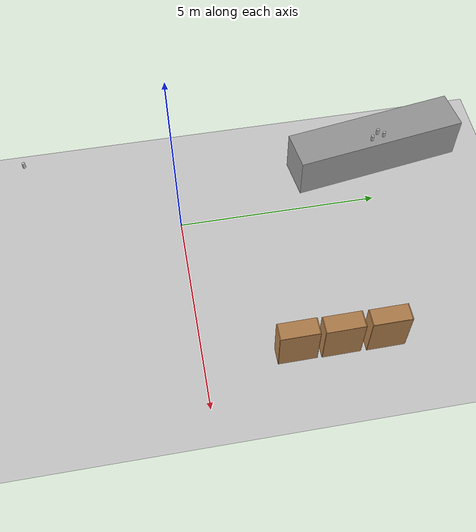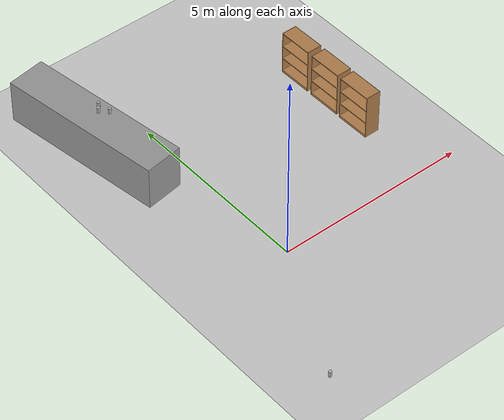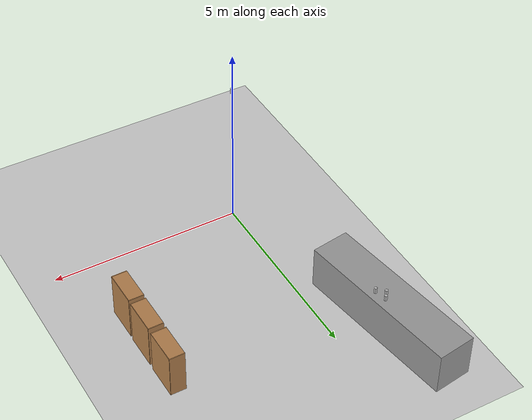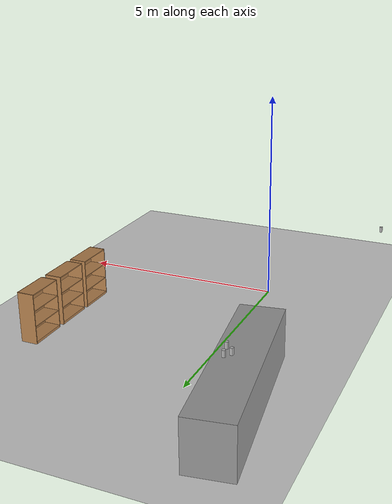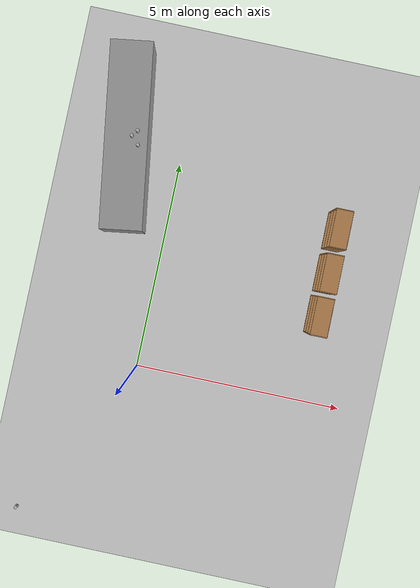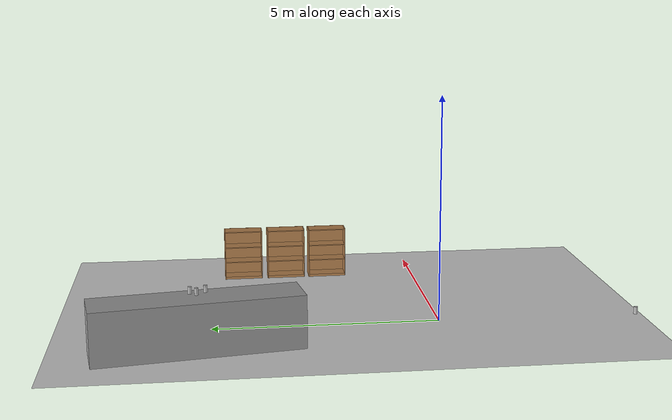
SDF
<sdf version="1.6">
 <world name="default">
  <light name="sun" type="directional">
   <pose>0 0 10 0 -0 0</pose>
   <diffuse>0.8 0.8 0.8 1</diffuse>
   <specular>0.1 0.1 0.1 1</specular>
   <attenuation>
    <range>1000</range>
    <constant>0.9</constant>
    <linear>0.01</linear>
    <quadratic>0.001</quadratic>
   </attenuation>
   <direction>-0.5 0.5 -1</direction>
  </light>
  <model name="ground_plane">
   <static>1</static>
   <link name="link">
    <collision name="collision">
     <geometry><plane><normal>0 0 1</normal><size>100 100</size></plane></geometry>
     <surface><friction><ode><mu>100</mu><mu2>50</mu2></ode></friction></surface>
    </collision>
    <visual name="visual">
     <cast_shadows>0</cast_shadows>
     <geometry><plane><normal>0 0 1</normal><size>100 100</size></plane></geometry>
     <material>
      <script><uri>file://media/materials/scripts/gazebo.material</uri><name>Gazebo/Grey</name></script>
     </material>
    </visual>
   </link>
  </model>
  <gravity>0 0 -9.8</gravity>
  <magnetic_field>6e-06 2.3e-05 -4.2e-05</magnetic_field>
  <atmosphere type="adiabatic"/>
  <physics name="default_physics" default="0" type="ode">
   <max_step_size>0.001</max_step_size>
   <real_time_factor>1</real_time_factor>
   <real_time_update_rate>1000</real_time_update_rate>
  </physics>
  <scene><ambient>0.4 0.4 0.4 1</ambient><background>0.7 0.7 0.7 1</background><shadows>1</shadows></scene>
  <spherical_coordinates>
   <surface_model>EARTH_WGS84</surface_model>
   <latitude_deg>0</latitude_deg>
   <longitude_deg>0</longitude_deg>
   <elevation>0</elevation>
   <heading_deg>0</heading_deg>
  </spherical_coordinates>
  <model name="bookshelf">
   <static>1</static>
   <link name="link">
    <inertial><mass>1</mass></inertial>
    <collision name="back">
     <pose>0 0.005 0.6 0 -0 0</pose>
     <geometry><box><size>0.9 0.01 1.2</size></box></geometry>
    </collision>
    <visual name="visual1">
     <pose>0 0.005 0.6 0 -0 0</pose>
     <geometry><box><size>0.9 0.01 1.2</size></box></geometry>
     <material>
      <script><uri>file://media/materials/scripts/gazebo.material</uri><name>Gazebo/Wood</name></script>
     </material>
    </visual>
    <collision name="left_side">
     <pose>0.45 -0.195 0.6 0 -0 0</pose>
     <geometry><box><size>0.02 0.4 1.2</size></box></geometry>
    </collision>
    <visual name="visual2">
     <pose>0.45 -0.195 0.6 0 -0 0</pose>
     <geometry><box><size>0.02 0.4 1.2</size></box></geometry>
     <material>
      <script><uri>file://media/materials/scripts/gazebo.material</uri><name>Gazebo/Wood</name></script>
     </material>
    </visual>
    <collision name="right_side">
     <pose>-0.45 -0.195 0.6 0 -0 0</pose>
     <geometry><box><size>0.02 0.4 1.2</size></box></geometry>
    </collision>
    <visual name="visual3">
     <pose>-0.45 -0.195 0.6 0 -0 0</pose>
     <geometry><box><size>0.02 0.4 1.2</size></box></geometry>
     <material>
      <script><uri>file://media/materials/scripts/gazebo.material</uri><name>Gazebo/Wood</name></script>
     </material>
    </visual>
    <collision name="bottom">
     <pose>0 -0.195 0.03 0 -0 0</pose>
     <geometry><box><size>0.88 0.4 0.06</size></box></geometry>
    </collision>
    <visual name="visual4">
     <pose>0 -0.195 0.03 0 -0 0</pose>
     <geometry><box><size>0.88 0.4 0.06</size></box></geometry>
     <material>
      <script><uri>file://media/materials/scripts/gazebo.material</uri><name>Gazebo/Wood</name></script>
     </material>
    </visual>
    <collision name="top">
     <pose>0 -0.195 1.19 0 -0 0</pose>
     <geometry><box><size>0.88 0.4 0.02</size></box></geometry>
    </collision>
    <visual name="visual5">
     <pose>0 -0.195 1.19 0 -0 0</pose>
     <geometry><box><size>0.88 0.4 0.02</size></box></geometry>
     <material>
      <script><uri>file://media/materials/scripts/gazebo.material</uri><name>Gazebo/Wood</name></script>
     </material>
    </visual>
    <collision name="low_shelf">
     <pose>0 -0.195 0.43 0 -0 0</pose>
     <geometry><box><size>0.88 0.4 0.02</size></box></geometry>
    </collision>
    <visual name="visual6">
     <pose>0 -0.195 0.43 0 -0 0</pose>
     <geometry><box><size>0.88 0.4 0.02</size></box></geometry>
     <material>
      <script><uri>file://media/materials/scripts/gazebo.material</uri><name>Gazebo/Wood</name></script>
     </material>
    </visual>
    <collision name="high_shelf">
     <pose>0 -0.195 0.8 0 -0 0</pose>
     <geometry><box><size>0.88 0.4 0.02</size></box></geometry>
    </collision>
    <visual name="visual7">
     <pose>0 -0.195 0.8 0 -0 0</pose>
     <geometry><box><size>0.88 0.4 0.02</size></box></geometry>
     <material>
      <script><uri>file://media/materials/scripts/gazebo.material</uri><name>Gazebo/Wood</name></script>
     </material>
    </visual>
   </link>
   <pose>4.18023 2.12159 0 0 0 -1.56362</pose>
  </model>
  <model name="unit_box">
   <pose>-1.29903 5.2723 0.571678 0 -2e-06 0.150347</pose>
   <link name="link">
    <inertial>
     <mass>1</mass>
     <inertia>
      <ixx>0.166667</ixx>
      <ixy>0</ixy>
      <ixz>0</ixz>
      <iyy>0.166667</iyy>
      <iyz>0</iyz>
      <izz>0.166667</izz>
     </inertia>
    </inertial>
    <collision name="collision"><geometry><box><size>0.999999 4.38603 1.14688</size></box></geometry></collision>
    <visual name="visual">
     <geometry><box><size>0.999999 4.38603 1.14688</size></box></geometry>
     <material>
      <script><name>Gazebo/Grey</name><uri>file://media/materials/scripts/gazebo.material</uri></script>
     </material>
    </visual>
   </link>
   <static>1</static>
  </model>
  <model name="bookshelf_clone">
   <static>1</static>
   <link name="link">
    <inertial><mass>1</mass></inertial>
    <collision name="back">
     <pose>0 0.005 0.6 0 -0 0</pose>
     <geometry><box><size>0.9 0.01 1.2</size></box></geometry>
    </collision>
    <visual name="visual1">
     <pose>0 0.005 0.6 0 -0 0</pose>
     <geometry><box><size>0.9 0.01 1.2</size></box></geometry>
     <material>
      <script><uri>file://media/materials/scripts/gazebo.material</uri><name>Gazebo/Wood</name></script>
     </material>
    </visual>
    <collision name="left_side">
     <pose>0.45 -0.195 0.6 0 -0 0</pose>
     <geometry><box><size>0.02 0.4 1.2</size></box></geometry>
    </collision>
    <visual name="visual2">
     <pose>0.45 -0.195 0.6 0 -0 0</pose>
     <geometry><box><size>0.02 0.4 1.2</size></box></geometry>
     <material>
      <script><uri>file://media/materials/scripts/gazebo.material</uri><name>Gazebo/Wood</name></script>
     </material>
    </visual>
    <collision name="right_side">
     <pose>-0.45 -0.195 0.6 0 -0 0</pose>
     <geometry><box><size>0.02 0.4 1.2</size></box></geometry>
    </collision>
    <visual name="visual3">
     <pose>-0.45 -0.195 0.6 0 -0 0</pose>
     <geometry><box><size>0.02 0.4 1.2</size></box></geometry>
     <material>
      <script><uri>file://media/materials/scripts/gazebo.material</uri><name>Gazebo/Wood</name></script>
     </material>
    </visual>
    <collision name="bottom">
     <pose>0 -0.195 0.03 0 -0 0</pose>
     <geometry><box><size>0.88 0.4 0.06</size></box></geometry>
    </collision>
    <visual name="visual4">
     <pose>0 -0.195 0.03 0 -0 0</pose>
     <geometry><box><size>0.88 0.4 0.06</size></box></geometry>
     <material>
      <script><uri>file://media/materials/scripts/gazebo.material</uri><name>Gazebo/Wood</name></script>
     </material>
    </visual>
    <collision name="top">
     <pose>0 -0.195 1.19 0 -0 0</pose>
     <geometry><box><size>0.88 0.4 0.02</size></box></geometry>
    </collision>
    <visual name="visual5">
     <pose>0 -0.195 1.19 0 -0 0</pose>
     <geometry><box><size>0.88 0.4 0.02</size></box></geometry>
     <material>
      <script><uri>file://media/materials/scripts/gazebo.material</uri><name>Gazebo/Wood</name></script>
     </material>
    </visual>
    <collision name="low_shelf">
     <pose>0 -0.195 0.43 0 -0 0</pose>
     <geometry><box><size>0.88 0.4 0.02</size></box></geometry>
    </collision>
    <visual name="visual6">
     <pose>0 -0.195 0.43 0 -0 0</pose>
     <geometry><box><size>0.88 0.4 0.02</size></box></geometry>
     <material>
      <script><uri>file://media/materials/scripts/gazebo.material</uri><name>Gazebo/Wood</name></script>
     </material>
    </visual>
    <collision name="high_shelf">
     <pose>0 -0.195 0.8 0 -0 0</pose>
     <geometry><box><size>0.88 0.4 0.02</size></box></geometry>
    </collision>
    <visual name="visual7">
     <pose>0 -0.195 0.8 0 -0 0</pose>
     <geometry><box><size>0.88 0.4 0.02</size></box></geometry>
     <material>
      <script><uri>file://media/materials/scripts/gazebo.material</uri><name>Gazebo/Wood</name></script>
     </material>
    </visual>
   </link>
   <pose>4.18563 3.13842 0 0 0 -1.56362</pose>
  </model>
  <model name="bookshelf_clone_0">
   <static>1</static>
   <link name="link">
    <inertial><mass>1</mass></inertial>
    <collision name="back">
     <pose>0 0.005 0.6 0 -0 0</pose>
     <geometry><box><size>0.9 0.01 1.2</size></box></geometry>
    </collision>
    <visual name="visual1">
     <pose>0 0.005 0.6 0 -0 0</pose>
     <geometry><box><size>0.9 0.01 1.2</size></box></geometry>
     <material>
      <script><uri>file://media/materials/scripts/gazebo.material</uri><name>Gazebo/Wood</name></script>
     </material>
    </visual>
    <collision name="left_side">
     <pose>0.45 -0.195 0.6 0 -0 0</pose>
     <geometry><box><size>0.02 0.4 1.2</size></box></geometry>
    </collision>
    <visual name="visual2">
     <pose>0.45 -0.195 0.6 0 -0 0</pose>
     <geometry><box><size>0.02 0.4 1.2</size></box></geometry>
     <material>
      <script><uri>file://media/materials/scripts/gazebo.material</uri><name>Gazebo/Wood</name></script>
     </material>
    </visual>
    <collision name="right_side">
     <pose>-0.45 -0.195 0.6 0 -0 0</pose>
     <geometry><box><size>0.02 0.4 1.2</size></box></geometry>
    </collision>
    <visual name="visual3">
     <pose>-0.45 -0.195 0.6 0 -0 0</pose>
     <geometry><box><size>0.02 0.4 1.2</size></box></geometry>
     <material>
      <script><uri>file://media/materials/scripts/gazebo.material</uri><name>Gazebo/Wood</name></script>
     </material>
    </visual>
    <collision name="bottom">
     <pose>0 -0.195 0.03 0 -0 0</pose>
     <geometry><box><size>0.88 0.4 0.06</size></box></geometry>
    </collision>
    <visual name="visual4">
     <pose>0 -0.195 0.03 0 -0 0</pose>
     <geometry><box><size>0.88 0.4 0.06</size></box></geometry>
     <material>
      <script><uri>file://media/materials/scripts/gazebo.material</uri><name>Gazebo/Wood</name></script>
     </material>
    </visual>
    <collision name="top">
     <pose>0 -0.195 1.19 0 -0 0</pose>
     <geometry><box><size>0.88 0.4 0.02</size></box></geometry>
    </collision>
    <visual name="visual5">
     <pose>0 -0.195 1.19 0 -0 0</pose>
     <geometry><box><size>0.88 0.4 0.02</size></box></geometry>
     <material>
      <script><uri>file://media/materials/scripts/gazebo.material</uri><name>Gazebo/Wood</name></script>
     </material>
    </visual>
    <collision name="low_shelf">
     <pose>0 -0.195 0.43 0 -0 0</pose>
     <geometry><box><size>0.88 0.4 0.02</size></box></geometry>
    </collision>
    <visual name="visual6">
     <pose>0 -0.195 0.43 0 -0 0</pose>
     <geometry><box><size>0.88 0.4 0.02</size></box></geometry>
     <material>
      <script><uri>file://media/materials/scripts/gazebo.material</uri><name>Gazebo/Wood</name></script>
     </material>
    </visual>
    <collision name="high_shelf">
     <pose>0 -0.195 0.8 0 -0 0</pose>
     <geometry><box><size>0.88 0.4 0.02</size></box></geometry>
    </collision>
    <visual name="visual7">
     <pose>0 -0.195 0.8 0 -0 0</pose>
     <geometry><box><size>0.88 0.4 0.02</size></box></geometry>
     <material>
      <script><uri>file://media/materials/scripts/gazebo.material</uri><name>Gazebo/Wood</name></script>
     </material>
    </visual>
   </link>
   <pose>4.18699 4.18626 0 0 0 -1.56362</pose>
  </model>
  <model name="cocacola">
   <static>0</static>
   <link name="link">
    <inertial>
     <mass>0.25</mass>
     <inertia><ixx>0</ixx><ixy>0</ixy><ixz>0</ixz><iyy>0</iyy><iyz>0</iyz><izz>0</izz></inertia>
    </inertial>
    <collision name="collision">
     <pose>0 0 0.075 -3.14159 -0 0</pose>
     <geometry><cylinder><radius>0.04</radius><length>0.15</length></cylinder></geometry>
    </collision>
    <visual name="visual">
     <pose>0 0 0.075 -3.14159 -0 0</pose>
     <geometry><cylinder><radius>0.04</radius><length>0.15</length></cylinder></geometry>
     <material>
      <script>
       <uri>model://cocacola/material/scripts</uri>
       <uri>model://cocacola/material/textures</uri>
       <name>Custom/cocacola</name>
      </script>
     </material>
    </visual>
    <velocity_decay><linear>0</linear><angular>0</angular></velocity_decay>
   </link>
   <pose>-1.15625 5.26816 1.14513 0.000175 -0.000209 0.002422</pose>
  </model>
  <model name="cocacola_clone">
   <static>0</static>
   <link name="link">
    <inertial>
     <mass>0.25</mass>
     <inertia><ixx>0</ixx><ixy>0</ixy><ixz>0</ixz><iyy>0</iyy><iyz>0</iyz><izz>0</izz></inertia>
    </inertial>
    <collision name="collision">
     <pose>0 0 0.075 -3.14159 -0 0</pose>
     <geometry><cylinder><radius>0.04</radius><length>0.15</length></cylinder></geometry>
    </collision>
    <visual name="visual">
     <pose>0 0 0.075 -3.14159 -0 0</pose>
     <geometry><cylinder><radius>0.04</radius><length>0.15</length></cylinder></geometry>
     <material>
      <script>
       <uri>model://cocacola/material/scripts</uri>
       <uri>model://cocacola/material/textures</uri>
       <name>Custom/cocacola</name>
      </script>
     </material>
    </visual>
    <velocity_decay><linear>0</linear><angular>0</angular></velocity_decay>
   </link>
   <pose>-1.04956 5.40559 1.14514 -0.00041 -0.000299 -0.000803</pose>
  </model>
  <model name="cocacola_clone_0">
   <static>0</static>
   <link name="link">
    <inertial>
     <mass>0.25</mass>
     <inertia><ixx>0</ixx><ixy>0</ixy><ixz>0</ixz><iyy>0</iyy><iyz>0</iyz><izz>0</izz></inertia>
    </inertial>
    <collision name="collision">
     <pose>0 0 0.075 -3.14159 -0 0</pose>
     <geometry><cylinder><radius>0.04</radius><length>0.15</length></cylinder></geometry>
    </collision>
    <visual name="visual">
     <pose>0 0 0.075 -3.14159 -0 0</pose>
     <geometry><cylinder><radius>0.04</radius><length>0.15</length></cylinder></geometry>
     <material>
      <script>
       <uri>model://cocacola/material/scripts</uri>
       <uri>model://cocacola/material/textures</uri>
       <name>Custom/cocacola</name>
      </script>
     </material>
    </visual>
    <velocity_decay><linear>0</linear><angular>0</angular></velocity_decay>
   </link>
   <pose>-0.976651 5.08521 1.14513 0.00028 0.000405 0.0032</pose>
  </model>
  <model name="cocacola_clone_0_clone">
   <static>0</static>
   <link name="link">
    <inertial>
     <mass>0.25</mass>
     <inertia><ixx>0</ixx><ixy>0</ixy><ixz>0</ixz><iyy>0</iyy><iyz>0</iyz><izz>0</izz></inertia>
    </inertial>
    <collision name="collision">
     <pose>0 0 0.075 -3.14159 -0 0</pose>
     <geometry><cylinder><radius>0.04</radius><length>0.15</length></cylinder></geometry>
    </collision>
    <visual name="visual">
     <pose>0 0 0.075 -3.14159 -0 0</pose>
     <geometry><cylinder><radius>0.04</radius><length>0.15</length></cylinder></geometry>
     <material>
      <script>
       <uri>model://cocacola/material/scripts</uri>
       <uri>model://cocacola/material/textures</uri>
       <name>Custom/cocacola</name>
      </script>
     </material>
    </visual>
    <velocity_decay><linear>0</linear><angular>0</angular></velocity_decay>
   </link>
   <pose>-2.02781 -3.73035 0.660031 0.000525 0.000591 0.002571</pose>
  </model>
 </world>
</sdf>
